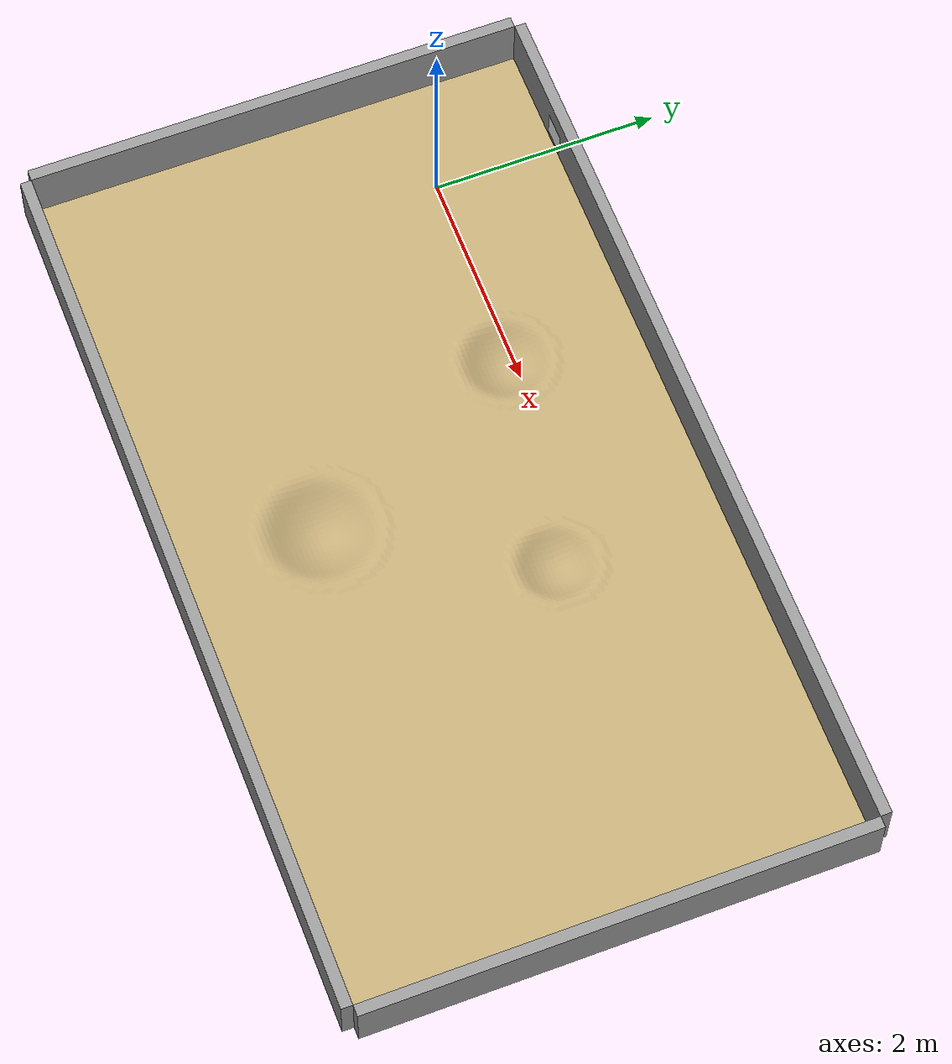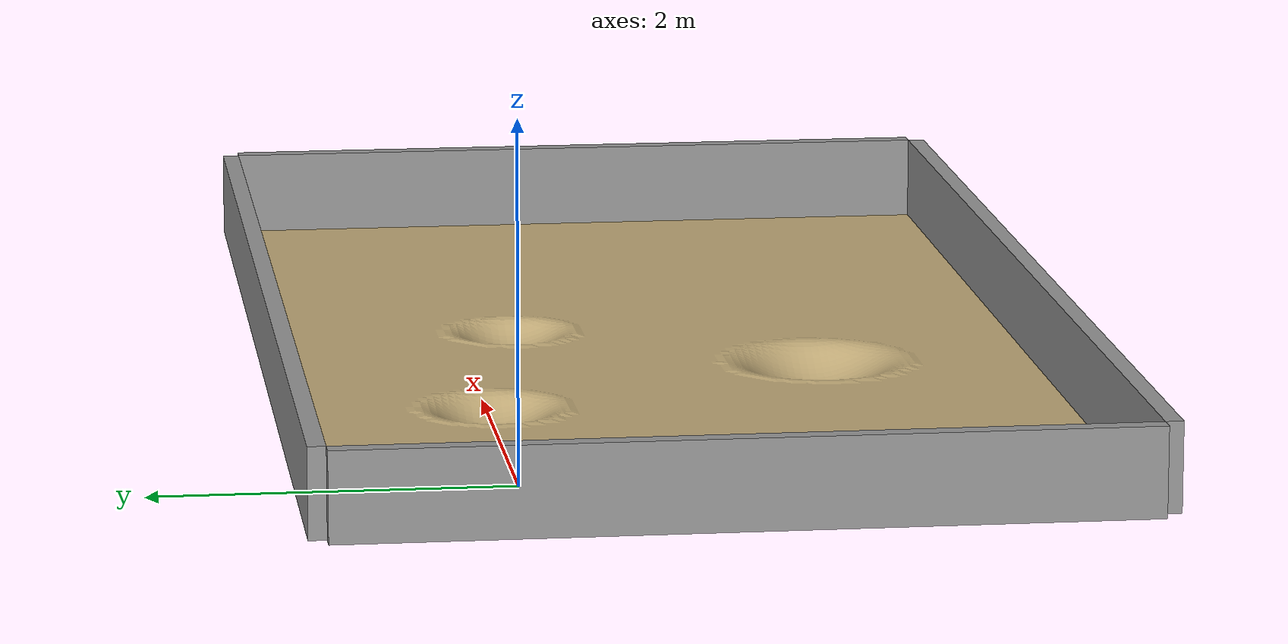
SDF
<?xml version="1.0" ?>
<sdf version="1.8">
  <world name="moon_yard_regression">

    <gravity>0 0 -9.81</gravity>

    <physics name="1ms" type="ode">
      <max_step_size>0.002</max_step_size>
      <real_time_factor>1.0</real_time_factor>
      <real_time_update_rate>500</real_time_update_rate>
    </physics>

    <plugin filename="ignition-gazebo-physics-system" name="ignition::gazebo::systems::Physics"></plugin>
    <plugin filename="ignition-gazebo-sensors-system" name="ignition::gazebo::systems::Sensors">
      <render_engine>ogre2</render_engine>
    </plugin>
    <plugin filename="ignition-gazebo-scene-broadcaster-system" name="ignition::gazebo::systems::SceneBroadcaster"></plugin>
    <plugin filename="ignition-gazebo-user-commands-system" name="ignition::gazebo::systems::UserCommands"></plugin>
    <plugin filename="ignition-gazebo-imu-system" name="ignition::gazebo::systems::Imu"></plugin>

    <include>
      <uri>https://fuel.gazebosim.org/1.0/OpenRobotics/models/Sun</uri>
    </include>

    <include>
      <uri>model://lunar_surface</uri>
      <name>lunar_surface</name>
      <pose>2.95 -1.1 0.0 0 0 0</pose>
    </include>

    <include>
      <uri>model://apriltag_beacon</uri>
      <name>apriltag_beacon</name>
      <pose>0 1.08 0.25 0 0 0</pose>
      <static>true</static>
    </include>

    <model name="wall_north">
      <static>true</static>
      <pose>2.95 1.15 0.25 0 0 0</pose>
      <link name="link">
        <collision name="collision">
          <geometry><box><size>7.9 0.1 0.5</size></box></geometry>
        </collision>
        <visual name="visual">
          <geometry><box><size>7.9 0.1 0.5</size></box></geometry>
          <material><ambient>0.4 0.4 0.4 1</ambient><diffuse>0.6 0.6 0.6 1</diffuse></material>
        </visual>
      </link>
    </model>

    <model name="wall_south">
      <static>true</static>
      <pose>2.95 -3.35 0.25 0 0 0</pose>
      <link name="link">
        <collision name="collision">
          <geometry><box><size>7.9 0.1 0.5</size></box></geometry>
        </collision>
        <visual name="visual">
          <geometry><box><size>7.9 0.1 0.5</size></box></geometry>
          <material><ambient>0.4 0.4 0.4 1</ambient><diffuse>0.6 0.6 0.6 1</diffuse></material>
        </visual>
      </link>
    </model>

    <model name="wall_east">
      <static>true</static>
      <pose>6.95 -1.1 0.25 0 0 0</pose>
      <link name="link">
        <collision name="collision">
          <geometry><box><size>0.1 4.4 0.5</size></box></geometry>
        </collision>
        <visual name="visual">
          <geometry><box><size>0.1 4.4 0.5</size></box></geometry>
          <material><ambient>0.4 0.4 0.4 1</ambient><diffuse>0.6 0.6 0.6 1</diffuse></material>
        </visual>
      </link>
    </model>

    <model name="wall_west">
      <static>true</static>
      <pose>-1.05 -1.1 0.25 0 0 0</pose>
      <link name="link">
        <collision name="collision">
          <geometry><box><size>0.1 4.4 0.5</size></box></geometry>
        </collision>
        <visual name="visual">
          <geometry><box><size>0.1 4.4 0.5</size></box></geometry>
          <material><ambient>0.4 0.4 0.4 1</ambient><diffuse>0.6 0.6 0.6 1</diffuse></material>
        </visual>
      </link>
    </model>
  </world>
</sdf>

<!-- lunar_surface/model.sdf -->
<sdf version="1.8">
  <model name="lunar_surface">
    <static>true</static>
    <link name="surface_link">
      <visual name="ground_visual">
        <pose>0 0 0 0 0 0</pose>
        <geometry>
          <mesh>
            <uri>model://lunar_surface/meshes/lunar_surface_rulebook.obj</uri>
          </mesh>
        </geometry>
        <material>
          <ambient>0.76 0.67 0.47 1</ambient>
          <diffuse>0.76 0.67 0.47 1</diffuse>
          <specular>0.1 0.1 0.1 1</specular>
          <pbr>
            <metal>
              <albedo_map>model://lunar_surface/meshes/sand_texture.png</albedo_map>
            </metal>
          </pbr>
        </material>
      </visual>
      <collision name="ground_collision">
        <pose>0 0 0 0 0 0</pose>
        <geometry>
          <mesh>
            <uri>model://lunar_surface/meshes/lunar_surface_rulebook.obj</uri>
          </mesh>
        </geometry>
        <surface>
          <friction>
            <ode>
              <mu>0.9</mu>
              <mu2>0.9</mu2>
            </ode>
          </friction>
        </surface>
      </collision>

    </link>
  </model>
</sdf>

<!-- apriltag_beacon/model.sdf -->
<sdf version="1.8">
  <model name="apriltag_beacon">
    <static>true</static>

    <link name="tag_link">
      <visual name="tag_visual">
        <geometry>
          <plane>
            <normal>0 -1 0</normal>
            <size>0.25 0.25</size>
          </plane>
        </geometry>
        <material>
          <ambient>1 1 1 1</ambient>
          <diffuse>1 1 1 1</diffuse>
          <pbr>
            <metal>
              <albedo_map>materials/textures/tag36_11_00000.png</albedo_map>
            </metal>
          </pbr>
        </material>
      </visual>
    </link>

  </model>
</sdf>
